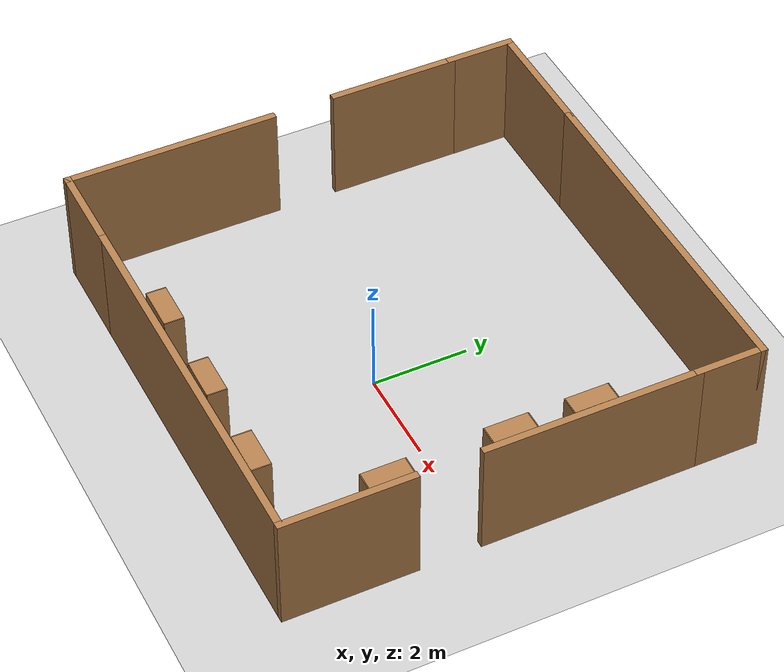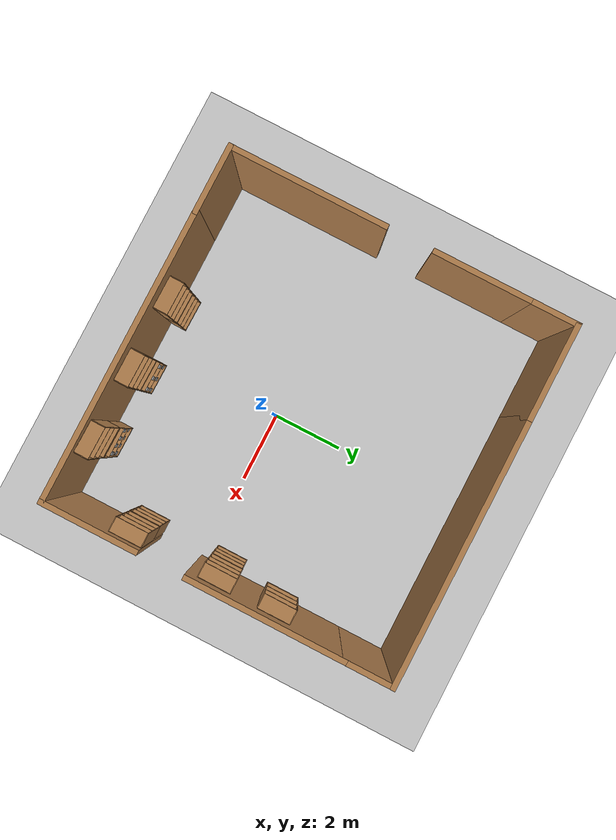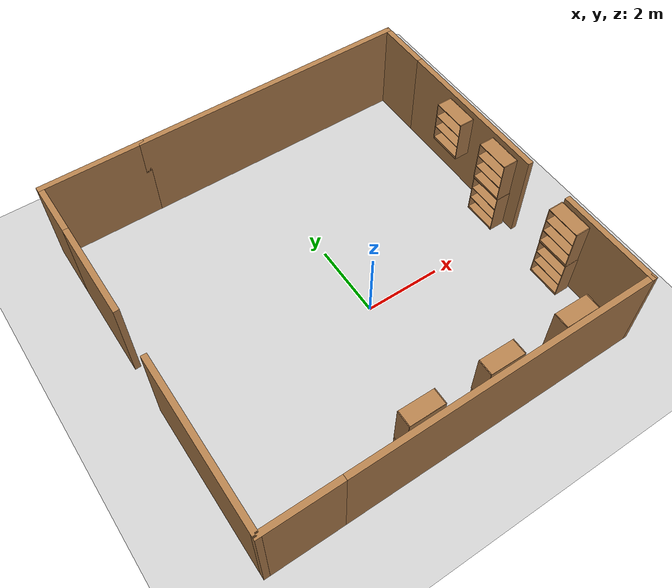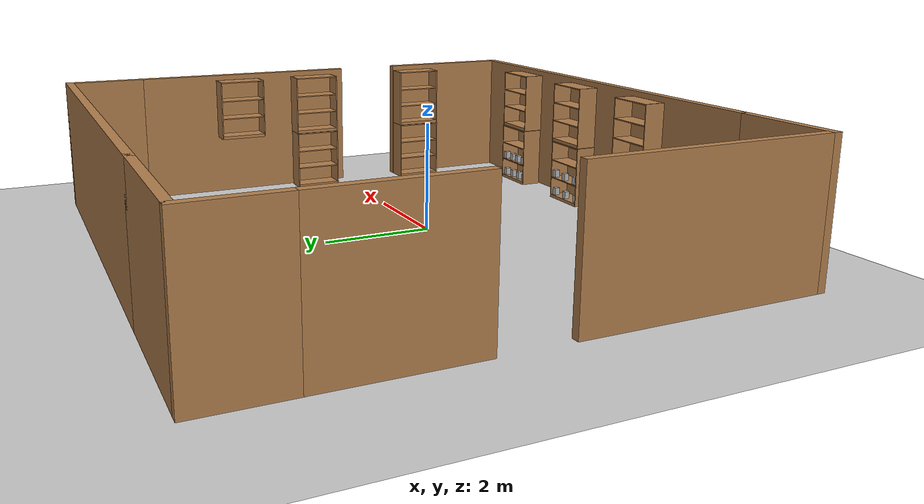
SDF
<sdf version="1.7">
 <world name="default">
  <model name="ground_plane">
   <static>1</static>
   <link name="link">
    <collision name="collision">
     <geometry><plane><normal>0 0 1</normal><size>100 100</size></plane></geometry>
     <surface><friction><ode><mu>100</mu><mu2>50</mu2></ode></friction></surface>
    </collision>
    <visual name="visual">
     <cast_shadows>0</cast_shadows>
     <geometry><plane><normal>0 0 1</normal><size>100 100</size></plane></geometry>
     <material>
      <script><uri>file://media/materials/scripts/gazebo.material</uri><name>Gazebo/Grey</name></script>
     </material>
    </visual>
   </link>
  </model>
  <model name="shopping_mart_box">
   <pose>-0.44063 0.87202 0 0 -0 0</pose>
   <link name="Wall_11">
    <collision name="Wall_11_Collision">
     <geometry><box><size>2 0.15 2.5</size></box></geometry>
     <pose>0 0 1.25 0 -0 0</pose>
    </collision>
    <visual name="Wall_11_Visual">
     <pose>0 0 1.25 0 -0 0</pose>
     <geometry><box><size>2 0.15 2.5</size></box></geometry>
     <material>
      <script><uri>file://media/materials/scripts/gazebo.material</uri><name>Gazebo/Wood</name></script>
      <ambient>1 1 1 1</ambient>
     </material>
    </visual>
    <pose>-4.05 -4.85 0 0 -0 3.14159</pose>
   </link>
   <link name="Wall_12">
    <collision name="Wall_12_Collision">
     <geometry><box><size>4.5 0.15 2.5</size></box></geometry>
     <pose>0 0 1.25 0 -0 0</pose>
    </collision>
    <visual name="Wall_12_Visual">
     <pose>0 0 1.25 0 -0 0</pose>
     <geometry><box><size>4.5 0.15 2.5</size></box></geometry>
     <material>
      <script><uri>file://media/materials/scripts/gazebo.material</uri><name>Gazebo/Wood</name></script>
      <ambient>1 1 1 1</ambient>
     </material>
    </visual>
    <pose>-4.975 -2.675 0 0 -0 1.5708</pose>
   </link>
   <link name="Wall_15">
    <collision name="Wall_15_Collision">
     <geometry><box><size>2.75 0.15 2.5</size></box></geometry>
     <pose>0 0 1.25 0 -0 0</pose>
    </collision>
    <visual name="Wall_15_Visual">
     <pose>0 0 1.25 0 -0 0</pose>
     <geometry><box><size>2.75 0.15 2.5</size></box></geometry>
     <material>
      <script><uri>file://media/materials/scripts/gazebo.material</uri><name>Gazebo/Wood</name></script>
      <ambient>1 1 1 1</ambient>
     </material>
    </visual>
    <pose>-4.975 2.2 0 0 0 -1.5708</pose>
   </link>
   <link name="Wall_17">
    <collision name="Wall_17_Collision">
     <geometry><box><size>1.5 0.15 2.5</size></box></geometry>
     <pose>0 0 1.25 0 -0 0</pose>
    </collision>
    <visual name="Wall_17_Visual">
     <pose>0 0 1.25 0 -0 0</pose>
     <geometry><box><size>1.5 0.15 2.5</size></box></geometry>
     <material>
      <script><uri>file://media/materials/scripts/gazebo.material</uri><name>Gazebo/Wood</name></script>
      <ambient>1 1 1 1</ambient>
     </material>
    </visual>
    <pose>-4.975 4.175 0 0 -0 1.5708</pose>
   </link>
   <link name="Wall_21">
    <collision name="Wall_21_Collision">
     <geometry><box><size>2.75 0.15 2.5</size></box></geometry>
     <pose>0 0 1.25 0 -0 0</pose>
    </collision>
    <visual name="Wall_21_Visual">
     <pose>0 0 1.25 0 -0 0</pose>
     <geometry><box><size>2.75 0.15 2.5</size></box></geometry>
     <material>
      <script><uri>file://media/materials/scripts/gazebo.material</uri><name>Gazebo/Wood</name></script>
      <ambient>1 1 1 1</ambient>
     </material>
    </visual>
    <pose>-3.675 4.85 0 0 -0 0</pose>
   </link>
   <link name="Wall_22">
    <collision name="Wall_22_Collision">
     <geometry><box><size>7.5 0.15 2.5</size></box></geometry>
     <pose>0 0 1.25 0 -0 0</pose>
    </collision>
    <visual name="Wall_22_Visual">
     <pose>0 0 1.25 0 -0 0</pose>
     <geometry><box><size>7.5 0.15 2.5</size></box></geometry>
     <material>
      <script><uri>file://media/materials/scripts/gazebo.material</uri><name>Gazebo/Wood</name></script>
      <ambient>1 1 1 1</ambient>
     </material>
    </visual>
    <pose>1.3 4.85 0 0 -0 0</pose>
   </link>
   <link name="Wall_23">
    <collision name="Wall_23_Collision">
     <geometry><box><size>1.5 0.15 2.5</size></box></geometry>
     <pose>0 0 1.25 0 -0 0</pose>
    </collision>
    <visual name="Wall_23_Visual">
     <pose>0 0 1.25 0 -0 0</pose>
     <geometry><box><size>1.5 0.15 2.5</size></box></geometry>
     <material>
      <script><uri>file://media/materials/scripts/gazebo.material</uri><name>Gazebo/Wood</name></script>
      <ambient>1 1 1 1</ambient>
     </material>
    </visual>
    <pose>4.975 4.175 0 0 0 -1.5708</pose>
   </link>
   <link name="Wall_29">
    <collision name="Wall_29_Collision">
     <geometry><box><size>4.5 0.15 2.5</size></box></geometry>
     <pose>0 0 1.25 0 -0 0</pose>
    </collision>
    <visual name="Wall_29_Visual">
     <pose>0 0 1.25 0 -0 0</pose>
     <geometry><box><size>4.5 0.15 2.5</size></box></geometry>
     <material>
      <script><uri>file://media/materials/scripts/gazebo.material</uri><name>Gazebo/Wood</name></script>
      <ambient>1 1 1 1</ambient>
     </material>
    </visual>
    <pose>4.975 1.325 0 0 0 -1.5708</pose>
   </link>
   <link name="Wall_31">
    <collision name="Wall_31_Collision">
     <geometry><box><size>2.75 0.15 2.5</size></box></geometry>
     <pose>0 0 1.25 0 -0 0</pose>
    </collision>
    <visual name="Wall_31_Visual">
     <pose>0 0 1.25 0 -0 0</pose>
     <geometry><box><size>2.75 0.15 2.5</size></box></geometry>
     <material>
      <script><uri>file://media/materials/scripts/gazebo.material</uri><name>Gazebo/Wood</name></script>
      <ambient>1 1 1 1</ambient>
     </material>
    </visual>
    <pose>4.975 -3.55 0 0 -0 1.5708</pose>
   </link>
   <link name="Wall_6">
    <collision name="Wall_6_Collision">
     <geometry><box><size>8.25 0.15 2.5</size></box></geometry>
     <pose>0 0 1.25 0 -0 0</pose>
    </collision>
    <visual name="Wall_6_Visual">
     <pose>0 0 1.25 0 -0 0</pose>
     <geometry><box><size>8.25 0.15 2.5</size></box></geometry>
     <material>
      <script><uri>file://media/materials/scripts/gazebo.material</uri><name>Gazebo/Wood</name></script>
      <ambient>1 1 1 1</ambient>
     </material>
    </visual>
    <pose>0.925 -4.85 0 0 -0 0</pose>
   </link>
   <static>1</static>
  </model>
  <model name="bookshelf_4_clone_1">
   <static>1</static>
   <link name="link">
    <inertial><mass>1</mass></inertial>
    <collision name="back">
     <pose>0 0.005 0.6 0 -0 0</pose>
     <geometry><box><size>0.9 0.01 1.2</size></box></geometry>
    </collision>
    <visual name="visual1">
     <pose>0 0.005 0.6 0 -0 0</pose>
     <geometry><box><size>0.9 0.01 1.2</size></box></geometry>
     <material>
      <script><uri>file://media/materials/scripts/gazebo.material</uri><name>Gazebo/Wood</name></script>
     </material>
    </visual>
    <collision name="left_side">
     <pose>0.45 -0.195 0.6 0 -0 0</pose>
     <geometry><box><size>0.02 0.4 1.2</size></box></geometry>
    </collision>
    <visual name="visual2">
     <pose>0.45 -0.195 0.6 0 -0 0</pose>
     <geometry><box><size>0.02 0.4 1.2</size></box></geometry>
     <material>
      <script><uri>file://media/materials/scripts/gazebo.material</uri><name>Gazebo/Wood</name></script>
     </material>
    </visual>
    <collision name="right_side">
     <pose>-0.45 -0.195 0.6 0 -0 0</pose>
     <geometry><box><size>0.02 0.4 1.2</size></box></geometry>
    </collision>
    <visual name="visual3">
     <pose>-0.45 -0.195 0.6 0 -0 0</pose>
     <geometry><box><size>0.02 0.4 1.2</size></box></geometry>
     <material>
      <script><uri>file://media/materials/scripts/gazebo.material</uri><name>Gazebo/Wood</name></script>
     </material>
    </visual>
    <collision name="bottom">
     <pose>0 -0.195 0.03 0 -0 0</pose>
     <geometry><box><size>0.88 0.4 0.06</size></box></geometry>
    </collision>
    <visual name="visual4">
     <pose>0 -0.195 0.03 0 -0 0</pose>
     <geometry><box><size>0.88 0.4 0.06</size></box></geometry>
     <material>
      <script><uri>file://media/materials/scripts/gazebo.material</uri><name>Gazebo/Wood</name></script>
     </material>
    </visual>
    <collision name="top">
     <pose>0 -0.195 1.19 0 -0 0</pose>
     <geometry><box><size>0.88 0.4 0.02</size></box></geometry>
    </collision>
    <visual name="visual5">
     <pose>0 -0.195 1.19 0 -0 0</pose>
     <geometry><box><size>0.88 0.4 0.02</size></box></geometry>
     <material>
      <script><uri>file://media/materials/scripts/gazebo.material</uri><name>Gazebo/Wood</name></script>
     </material>
    </visual>
    <collision name="low_shelf">
     <pose>0 -0.195 0.43 0 -0 0</pose>
     <geometry><box><size>0.88 0.4 0.02</size></box></geometry>
    </collision>
    <visual name="visual6">
     <pose>0 -0.195 0.43 0 -0 0</pose>
     <geometry><box><size>0.88 0.4 0.02</size></box></geometry>
     <material>
      <script><uri>file://media/materials/scripts/gazebo.material</uri><name>Gazebo/Wood</name></script>
     </material>
    </visual>
    <collision name="high_shelf">
     <pose>0 -0.195 0.8 0 -0 0</pose>
     <geometry><box><size>0.88 0.4 0.02</size></box></geometry>
    </collision>
    <visual name="visual7">
     <pose>0 -0.195 0.8 0 -0 0</pose>
     <geometry><box><size>0.88 0.4 0.02</size></box></geometry>
     <material>
      <script><uri>file://media/materials/scripts/gazebo.material</uri><name>Gazebo/Wood</name></script>
     </material>
    </visual>
   </link>
   <pose>4.39312 0.69592 0 0 0 -1.5727</pose>
  </model>
  <model name="bookshelf_4_clone_1_clone">
   <static>1</static>
   <link name="link">
    <inertial><mass>1</mass></inertial>
    <collision name="back">
     <pose>0 0.005 0.6 0 -0 0</pose>
     <geometry><box><size>0.9 0.01 1.2</size></box></geometry>
    </collision>
    <visual name="visual1">
     <pose>0 0.005 0.6 0 -0 0</pose>
     <geometry><box><size>0.9 0.01 1.2</size></box></geometry>
     <material>
      <script><uri>file://media/materials/scripts/gazebo.material</uri><name>Gazebo/Wood</name></script>
     </material>
    </visual>
    <collision name="left_side">
     <pose>0.45 -0.195 0.6 0 -0 0</pose>
     <geometry><box><size>0.02 0.4 1.2</size></box></geometry>
    </collision>
    <visual name="visual2">
     <pose>0.45 -0.195 0.6 0 -0 0</pose>
     <geometry><box><size>0.02 0.4 1.2</size></box></geometry>
     <material>
      <script><uri>file://media/materials/scripts/gazebo.material</uri><name>Gazebo/Wood</name></script>
     </material>
    </visual>
    <collision name="right_side">
     <pose>-0.45 -0.195 0.6 0 -0 0</pose>
     <geometry><box><size>0.02 0.4 1.2</size></box></geometry>
    </collision>
    <visual name="visual3">
     <pose>-0.45 -0.195 0.6 0 -0 0</pose>
     <geometry><box><size>0.02 0.4 1.2</size></box></geometry>
     <material>
      <script><uri>file://media/materials/scripts/gazebo.material</uri><name>Gazebo/Wood</name></script>
     </material>
    </visual>
    <collision name="bottom">
     <pose>0 -0.195 0.03 0 -0 0</pose>
     <geometry><box><size>0.88 0.4 0.06</size></box></geometry>
    </collision>
    <visual name="visual4">
     <pose>0 -0.195 0.03 0 -0 0</pose>
     <geometry><box><size>0.88 0.4 0.06</size></box></geometry>
     <material>
      <script><uri>file://media/materials/scripts/gazebo.material</uri><name>Gazebo/Wood</name></script>
     </material>
    </visual>
    <collision name="top">
     <pose>0 -0.195 1.19 0 -0 0</pose>
     <geometry><box><size>0.88 0.4 0.02</size></box></geometry>
    </collision>
    <visual name="visual5">
     <pose>0 -0.195 1.19 0 -0 0</pose>
     <geometry><box><size>0.88 0.4 0.02</size></box></geometry>
     <material>
      <script><uri>file://media/materials/scripts/gazebo.material</uri><name>Gazebo/Wood</name></script>
     </material>
    </visual>
    <collision name="low_shelf">
     <pose>0 -0.195 0.43 0 -0 0</pose>
     <geometry><box><size>0.88 0.4 0.02</size></box></geometry>
    </collision>
    <visual name="visual6">
     <pose>0 -0.195 0.43 0 -0 0</pose>
     <geometry><box><size>0.88 0.4 0.02</size></box></geometry>
     <material>
      <script><uri>file://media/materials/scripts/gazebo.material</uri><name>Gazebo/Wood</name></script>
     </material>
    </visual>
    <collision name="high_shelf">
     <pose>0 -0.195 0.8 0 -0 0</pose>
     <geometry><box><size>0.88 0.4 0.02</size></box></geometry>
    </collision>
    <visual name="visual7">
     <pose>0 -0.195 0.8 0 -0 0</pose>
     <geometry><box><size>0.88 0.4 0.02</size></box></geometry>
     <material>
      <script><uri>file://media/materials/scripts/gazebo.material</uri><name>Gazebo/Wood</name></script>
     </material>
    </visual>
   </link>
   <pose>4.3806 2.34957 1.20741 0 0 -1.5727</pose>
  </model>
  <model name="bookshelf_4_clone_1_clone_clone_0">
   <static>1</static>
   <link name="link">
    <inertial><mass>1</mass></inertial>
    <collision name="back">
     <pose>0 0.005 0.6 0 -0 0</pose>
     <geometry><box><size>0.9 0.01 1.2</size></box></geometry>
    </collision>
    <visual name="visual1">
     <pose>0 0.005 0.6 0 -0 0</pose>
     <geometry><box><size>0.9 0.01 1.2</size></box></geometry>
     <material>
      <script><uri>file://media/materials/scripts/gazebo.material</uri><name>Gazebo/Wood</name></script>
     </material>
    </visual>
    <collision name="left_side">
     <pose>0.45 -0.195 0.6 0 -0 0</pose>
     <geometry><box><size>0.02 0.4 1.2</size></box></geometry>
    </collision>
    <visual name="visual2">
     <pose>0.45 -0.195 0.6 0 -0 0</pose>
     <geometry><box><size>0.02 0.4 1.2</size></box></geometry>
     <material>
      <script><uri>file://media/materials/scripts/gazebo.material</uri><name>Gazebo/Wood</name></script>
     </material>
    </visual>
    <collision name="right_side">
     <pose>-0.45 -0.195 0.6 0 -0 0</pose>
     <geometry><box><size>0.02 0.4 1.2</size></box></geometry>
    </collision>
    <visual name="visual3">
     <pose>-0.45 -0.195 0.6 0 -0 0</pose>
     <geometry><box><size>0.02 0.4 1.2</size></box></geometry>
     <material>
      <script><uri>file://media/materials/scripts/gazebo.material</uri><name>Gazebo/Wood</name></script>
     </material>
    </visual>
    <collision name="bottom">
     <pose>0 -0.195 0.03 0 -0 0</pose>
     <geometry><box><size>0.88 0.4 0.06</size></box></geometry>
    </collision>
    <visual name="visual4">
     <pose>0 -0.195 0.03 0 -0 0</pose>
     <geometry><box><size>0.88 0.4 0.06</size></box></geometry>
     <material>
      <script><uri>file://media/materials/scripts/gazebo.material</uri><name>Gazebo/Wood</name></script>
     </material>
    </visual>
    <collision name="top">
     <pose>0 -0.195 1.19 0 -0 0</pose>
     <geometry><box><size>0.88 0.4 0.02</size></box></geometry>
    </collision>
    <visual name="visual5">
     <pose>0 -0.195 1.19 0 -0 0</pose>
     <geometry><box><size>0.88 0.4 0.02</size></box></geometry>
     <material>
      <script><uri>file://media/materials/scripts/gazebo.material</uri><name>Gazebo/Wood</name></script>
     </material>
    </visual>
    <collision name="low_shelf">
     <pose>0 -0.195 0.43 0 -0 0</pose>
     <geometry><box><size>0.88 0.4 0.02</size></box></geometry>
    </collision>
    <visual name="visual6">
     <pose>0 -0.195 0.43 0 -0 0</pose>
     <geometry><box><size>0.88 0.4 0.02</size></box></geometry>
     <material>
      <script><uri>file://media/materials/scripts/gazebo.material</uri><name>Gazebo/Wood</name></script>
     </material>
    </visual>
    <collision name="high_shelf">
     <pose>0 -0.195 0.8 0 -0 0</pose>
     <geometry><box><size>0.88 0.4 0.02</size></box></geometry>
    </collision>
    <visual name="visual7">
     <pose>0 -0.195 0.8 0 -0 0</pose>
     <geometry><box><size>0.88 0.4 0.02</size></box></geometry>
     <material>
      <script><uri>file://media/materials/scripts/gazebo.material</uri><name>Gazebo/Wood</name></script>
     </material>
    </visual>
   </link>
   <pose>4.38615 0.705306 1.20741 0 0 -1.5727</pose>
  </model>
  <model name="bookshelf_5">
   <static>1</static>
   <link name="link">
    <inertial><mass>1</mass></inertial>
    <collision name="back">
     <pose>0 0.005 0.6 0 -0 0</pose>
     <geometry><box><size>0.9 0.01 1.2</size></box></geometry>
    </collision>
    <visual name="visual1">
     <pose>0 0.005 0.6 0 -0 0</pose>
     <geometry><box><size>0.9 0.01 1.2</size></box></geometry>
     <material>
      <script><uri>file://media/materials/scripts/gazebo.material</uri><name>Gazebo/Wood</name></script>
     </material>
    </visual>
    <collision name="left_side">
     <pose>0.45 -0.195 0.6 0 -0 0</pose>
     <geometry><box><size>0.02 0.4 1.2</size></box></geometry>
    </collision>
    <visual name="visual2">
     <pose>0.45 -0.195 0.6 0 -0 0</pose>
     <geometry><box><size>0.02 0.4 1.2</size></box></geometry>
     <material>
      <script><uri>file://media/materials/scripts/gazebo.material</uri><name>Gazebo/Wood</name></script>
     </material>
    </visual>
    <collision name="right_side">
     <pose>-0.45 -0.195 0.6 0 -0 0</pose>
     <geometry><box><size>0.02 0.4 1.2</size></box></geometry>
    </collision>
    <visual name="visual3">
     <pose>-0.45 -0.195 0.6 0 -0 0</pose>
     <geometry><box><size>0.02 0.4 1.2</size></box></geometry>
     <material>
      <script><uri>file://media/materials/scripts/gazebo.material</uri><name>Gazebo/Wood</name></script>
     </material>
    </visual>
    <collision name="bottom">
     <pose>0 -0.195 0.03 0 -0 0</pose>
     <geometry><box><size>0.88 0.4 0.06</size></box></geometry>
    </collision>
    <visual name="visual4">
     <pose>0 -0.195 0.03 0 -0 0</pose>
     <geometry><box><size>0.88 0.4 0.06</size></box></geometry>
     <material>
      <script><uri>file://media/materials/scripts/gazebo.material</uri><name>Gazebo/Wood</name></script>
     </material>
    </visual>
    <collision name="top">
     <pose>0 -0.195 1.19 0 -0 0</pose>
     <geometry><box><size>0.88 0.4 0.02</size></box></geometry>
    </collision>
    <visual name="visual5">
     <pose>0 -0.195 1.19 0 -0 0</pose>
     <geometry><box><size>0.88 0.4 0.02</size></box></geometry>
     <material>
      <script><uri>file://media/materials/scripts/gazebo.material</uri><name>Gazebo/Wood</name></script>
     </material>
    </visual>
    <collision name="low_shelf">
     <pose>0 -0.195 0.43 0 -0 0</pose>
     <geometry><box><size>0.88 0.4 0.02</size></box></geometry>
    </collision>
    <visual name="visual6">
     <pose>0 -0.195 0.43 0 -0 0</pose>
     <geometry><box><size>0.88 0.4 0.02</size></box></geometry>
     <material>
      <script><uri>file://media/materials/scripts/gazebo.material</uri><name>Gazebo/Wood</name></script>
     </material>
    </visual>
    <collision name="high_shelf">
     <pose>0 -0.195 0.8 0 -0 0</pose>
     <geometry><box><size>0.88 0.4 0.02</size></box></geometry>
    </collision>
    <visual name="visual7">
     <pose>0 -0.195 0.8 0 -0 0</pose>
     <geometry><box><size>0.88 0.4 0.02</size></box></geometry>
     <material>
      <script><uri>file://media/materials/scripts/gazebo.material</uri><name>Gazebo/Wood</name></script>
     </material>
    </visual>
   </link>
   <pose>2.65151 -3.85953 0 0 -0 3.12955</pose>
  </model>
  <model name="bookshelf_5_clone_0">
   <static>1</static>
   <link name="link">
    <inertial><mass>1</mass></inertial>
    <collision name="back">
     <pose>0 0.005 0.6 0 -0 0</pose>
     <geometry><box><size>0.9 0.01 1.2</size></box></geometry>
    </collision>
    <visual name="visual1">
     <pose>0 0.005 0.6 0 -0 0</pose>
     <geometry><box><size>0.9 0.01 1.2</size></box></geometry>
     <material>
      <script><uri>file://media/materials/scripts/gazebo.material</uri><name>Gazebo/Wood</name></script>
     </material>
    </visual>
    <collision name="left_side">
     <pose>0.45 -0.195 0.6 0 -0 0</pose>
     <geometry><box><size>0.02 0.4 1.2</size></box></geometry>
    </collision>
    <visual name="visual2">
     <pose>0.45 -0.195 0.6 0 -0 0</pose>
     <geometry><box><size>0.02 0.4 1.2</size></box></geometry>
     <material>
      <script><uri>file://media/materials/scripts/gazebo.material</uri><name>Gazebo/Wood</name></script>
     </material>
    </visual>
    <collision name="right_side">
     <pose>-0.45 -0.195 0.6 0 -0 0</pose>
     <geometry><box><size>0.02 0.4 1.2</size></box></geometry>
    </collision>
    <visual name="visual3">
     <pose>-0.45 -0.195 0.6 0 -0 0</pose>
     <geometry><box><size>0.02 0.4 1.2</size></box></geometry>
     <material>
      <script><uri>file://media/materials/scripts/gazebo.material</uri><name>Gazebo/Wood</name></script>
     </material>
    </visual>
    <collision name="bottom">
     <pose>0 -0.195 0.03 0 -0 0</pose>
     <geometry><box><size>0.88 0.4 0.06</size></box></geometry>
    </collision>
    <visual name="visual4">
     <pose>0 -0.195 0.03 0 -0 0</pose>
     <geometry><box><size>0.88 0.4 0.06</size></box></geometry>
     <material>
      <script><uri>file://media/materials/scripts/gazebo.material</uri><name>Gazebo/Wood</name></script>
     </material>
    </visual>
    <collision name="top">
     <pose>0 -0.195 1.19 0 -0 0</pose>
     <geometry><box><size>0.88 0.4 0.02</size></box></geometry>
    </collision>
    <visual name="visual5">
     <pose>0 -0.195 1.19 0 -0 0</pose>
     <geometry><box><size>0.88 0.4 0.02</size></box></geometry>
     <material>
      <script><uri>file://media/materials/scripts/gazebo.material</uri><name>Gazebo/Wood</name></script>
     </material>
    </visual>
    <collision name="low_shelf">
     <pose>0 -0.195 0.43 0 -0 0</pose>
     <geometry><box><size>0.88 0.4 0.02</size></box></geometry>
    </collision>
    <visual name="visual6">
     <pose>0 -0.195 0.43 0 -0 0</pose>
     <geometry><box><size>0.88 0.4 0.02</size></box></geometry>
     <material>
      <script><uri>file://media/materials/scripts/gazebo.material</uri><name>Gazebo/Wood</name></script>
     </material>
    </visual>
    <collision name="high_shelf">
     <pose>0 -0.195 0.8 0 -0 0</pose>
     <geometry><box><size>0.88 0.4 0.02</size></box></geometry>
    </collision>
    <visual name="visual7">
     <pose>0 -0.195 0.8 0 -0 0</pose>
     <geometry><box><size>0.88 0.4 0.02</size></box></geometry>
     <material>
      <script><uri>file://media/materials/scripts/gazebo.material</uri><name>Gazebo/Wood</name></script>
     </material>
    </visual>
   </link>
   <pose>0.624398 -3.83719 0 0 -0 3.12955</pose>
  </model>
  <model name="bookshelf_5_clone_2">
   <static>1</static>
   <link name="link">
    <inertial><mass>1</mass></inertial>
    <collision name="back">
     <pose>0 0.005 0.6 0 -0 0</pose>
     <geometry><box><size>0.9 0.01 1.2</size></box></geometry>
    </collision>
    <visual name="visual1">
     <pose>0 0.005 0.6 0 -0 0</pose>
     <geometry><box><size>0.9 0.01 1.2</size></box></geometry>
     <material>
      <script><uri>file://media/materials/scripts/gazebo.material</uri><name>Gazebo/Wood</name></script>
     </material>
    </visual>
    <collision name="left_side">
     <pose>0.45 -0.195 0.6 0 -0 0</pose>
     <geometry><box><size>0.02 0.4 1.2</size></box></geometry>
    </collision>
    <visual name="visual2">
     <pose>0.45 -0.195 0.6 0 -0 0</pose>
     <geometry><box><size>0.02 0.4 1.2</size></box></geometry>
     <material>
      <script><uri>file://media/materials/scripts/gazebo.material</uri><name>Gazebo/Wood</name></script>
     </material>
    </visual>
    <collision name="right_side">
     <pose>-0.45 -0.195 0.6 0 -0 0</pose>
     <geometry><box><size>0.02 0.4 1.2</size></box></geometry>
    </collision>
    <visual name="visual3">
     <pose>-0.45 -0.195 0.6 0 -0 0</pose>
     <geometry><box><size>0.02 0.4 1.2</size></box></geometry>
     <material>
      <script><uri>file://media/materials/scripts/gazebo.material</uri><name>Gazebo/Wood</name></script>
     </material>
    </visual>
    <collision name="bottom">
     <pose>0 -0.195 0.03 0 -0 0</pose>
     <geometry><box><size>0.88 0.4 0.06</size></box></geometry>
    </collision>
    <visual name="visual4">
     <pose>0 -0.195 0.03 0 -0 0</pose>
     <geometry><box><size>0.88 0.4 0.06</size></box></geometry>
     <material>
      <script><uri>file://media/materials/scripts/gazebo.material</uri><name>Gazebo/Wood</name></script>
     </material>
    </visual>
    <collision name="top">
     <pose>0 -0.195 1.19 0 -0 0</pose>
     <geometry><box><size>0.88 0.4 0.02</size></box></geometry>
    </collision>
    <visual name="visual5">
     <pose>0 -0.195 1.19 0 -0 0</pose>
     <geometry><box><size>0.88 0.4 0.02</size></box></geometry>
     <material>
      <script><uri>file://media/materials/scripts/gazebo.material</uri><name>Gazebo/Wood</name></script>
     </material>
    </visual>
    <collision name="low_shelf">
     <pose>0 -0.195 0.43 0 -0 0</pose>
     <geometry><box><size>0.88 0.4 0.02</size></box></geometry>
    </collision>
    <visual name="visual6">
     <pose>0 -0.195 0.43 0 -0 0</pose>
     <geometry><box><size>0.88 0.4 0.02</size></box></geometry>
     <material>
      <script><uri>file://media/materials/scripts/gazebo.material</uri><name>Gazebo/Wood</name></script>
     </material>
    </visual>
    <collision name="high_shelf">
     <pose>0 -0.195 0.8 0 -0 0</pose>
     <geometry><box><size>0.88 0.4 0.02</size></box></geometry>
    </collision>
    <visual name="visual7">
     <pose>0 -0.195 0.8 0 -0 0</pose>
     <geometry><box><size>0.88 0.4 0.02</size></box></geometry>
     <material>
      <script><uri>file://media/materials/scripts/gazebo.material</uri><name>Gazebo/Wood</name></script>
     </material>
    </visual>
   </link>
   <pose>-1.42311 -3.81825 0 0 -0 3.12955</pose>
  </model>
  <model name="bookshelf_5_clone">
   <static>1</static>
   <link name="link">
    <inertial><mass>1</mass></inertial>
    <collision name="back">
     <pose>0 0.005 0.6 0 -0 0</pose>
     <geometry><box><size>0.9 0.01 1.2</size></box></geometry>
    </collision>
    <visual name="visual1">
     <pose>0 0.005 0.6 0 -0 0</pose>
     <geometry><box><size>0.9 0.01 1.2</size></box></geometry>
     <material>
      <script><uri>file://media/materials/scripts/gazebo.material</uri><name>Gazebo/Wood</name></script>
     </material>
    </visual>
    <collision name="left_side">
     <pose>0.45 -0.195 0.6 0 -0 0</pose>
     <geometry><box><size>0.02 0.4 1.2</size></box></geometry>
    </collision>
    <visual name="visual2">
     <pose>0.45 -0.195 0.6 0 -0 0</pose>
     <geometry><box><size>0.02 0.4 1.2</size></box></geometry>
     <material>
      <script><uri>file://media/materials/scripts/gazebo.material</uri><name>Gazebo/Wood</name></script>
     </material>
    </visual>
    <collision name="right_side">
     <pose>-0.45 -0.195 0.6 0 -0 0</pose>
     <geometry><box><size>0.02 0.4 1.2</size></box></geometry>
    </collision>
    <visual name="visual3">
     <pose>-0.45 -0.195 0.6 0 -0 0</pose>
     <geometry><box><size>0.02 0.4 1.2</size></box></geometry>
     <material>
      <script><uri>file://media/materials/scripts/gazebo.material</uri><name>Gazebo/Wood</name></script>
     </material>
    </visual>
    <collision name="bottom">
     <pose>0 -0.195 0.03 0 -0 0</pose>
     <geometry><box><size>0.88 0.4 0.06</size></box></geometry>
    </collision>
    <visual name="visual4">
     <pose>0 -0.195 0.03 0 -0 0</pose>
     <geometry><box><size>0.88 0.4 0.06</size></box></geometry>
     <material>
      <script><uri>file://media/materials/scripts/gazebo.material</uri><name>Gazebo/Wood</name></script>
     </material>
    </visual>
    <collision name="top">
     <pose>0 -0.195 1.19 0 -0 0</pose>
     <geometry><box><size>0.88 0.4 0.02</size></box></geometry>
    </collision>
    <visual name="visual5">
     <pose>0 -0.195 1.19 0 -0 0</pose>
     <geometry><box><size>0.88 0.4 0.02</size></box></geometry>
     <material>
      <script><uri>file://media/materials/scripts/gazebo.material</uri><name>Gazebo/Wood</name></script>
     </material>
    </visual>
    <collision name="low_shelf">
     <pose>0 -0.195 0.43 0 -0 0</pose>
     <geometry><box><size>0.88 0.4 0.02</size></box></geometry>
    </collision>
    <visual name="visual6">
     <pose>0 -0.195 0.43 0 -0 0</pose>
     <geometry><box><size>0.88 0.4 0.02</size></box></geometry>
     <material>
      <script><uri>file://media/materials/scripts/gazebo.material</uri><name>Gazebo/Wood</name></script>
     </material>
    </visual>
    <collision name="high_shelf">
     <pose>0 -0.195 0.8 0 -0 0</pose>
     <geometry><box><size>0.88 0.4 0.02</size></box></geometry>
    </collision>
    <visual name="visual7">
     <pose>0 -0.195 0.8 0 -0 0</pose>
     <geometry><box><size>0.88 0.4 0.02</size></box></geometry>
     <material>
      <script><uri>file://media/materials/scripts/gazebo.material</uri><name>Gazebo/Wood</name></script>
     </material>
    </visual>
   </link>
   <pose>2.64795 -3.86432 1.21139 0 -0 3.12955</pose>
  </model>
  <model name="bookshelf_5_clone_clone">
   <static>1</static>
   <link name="link">
    <inertial><mass>1</mass></inertial>
    <collision name="back">
     <pose>0 0.005 0.6 0 -0 0</pose>
     <geometry><box><size>0.9 0.01 1.2</size></box></geometry>
    </collision>
    <visual name="visual1">
     <pose>0 0.005 0.6 0 -0 0</pose>
     <geometry><box><size>0.9 0.01 1.2</size></box></geometry>
     <material>
      <script><uri>file://media/materials/scripts/gazebo.material</uri><name>Gazebo/Wood</name></script>
     </material>
    </visual>
    <collision name="left_side">
     <pose>0.45 -0.195 0.6 0 -0 0</pose>
     <geometry><box><size>0.02 0.4 1.2</size></box></geometry>
    </collision>
    <visual name="visual2">
     <pose>0.45 -0.195 0.6 0 -0 0</pose>
     <geometry><box><size>0.02 0.4 1.2</size></box></geometry>
     <material>
      <script><uri>file://media/materials/scripts/gazebo.material</uri><name>Gazebo/Wood</name></script>
     </material>
    </visual>
    <collision name="right_side">
     <pose>-0.45 -0.195 0.6 0 -0 0</pose>
     <geometry><box><size>0.02 0.4 1.2</size></box></geometry>
    </collision>
    <visual name="visual3">
     <pose>-0.45 -0.195 0.6 0 -0 0</pose>
     <geometry><box><size>0.02 0.4 1.2</size></box></geometry>
     <material>
      <script><uri>file://media/materials/scripts/gazebo.material</uri><name>Gazebo/Wood</name></script>
     </material>
    </visual>
    <collision name="bottom">
     <pose>0 -0.195 0.03 0 -0 0</pose>
     <geometry><box><size>0.88 0.4 0.06</size></box></geometry>
    </collision>
    <visual name="visual4">
     <pose>0 -0.195 0.03 0 -0 0</pose>
     <geometry><box><size>0.88 0.4 0.06</size></box></geometry>
     <material>
      <script><uri>file://media/materials/scripts/gazebo.material</uri><name>Gazebo/Wood</name></script>
     </material>
    </visual>
    <collision name="top">
     <pose>0 -0.195 1.19 0 -0 0</pose>
     <geometry><box><size>0.88 0.4 0.02</size></box></geometry>
    </collision>
    <visual name="visual5">
     <pose>0 -0.195 1.19 0 -0 0</pose>
     <geometry><box><size>0.88 0.4 0.02</size></box></geometry>
     <material>
      <script><uri>file://media/materials/scripts/gazebo.material</uri><name>Gazebo/Wood</name></script>
     </material>
    </visual>
    <collision name="low_shelf">
     <pose>0 -0.195 0.43 0 -0 0</pose>
     <geometry><box><size>0.88 0.4 0.02</size></box></geometry>
    </collision>
    <visual name="visual6">
     <pose>0 -0.195 0.43 0 -0 0</pose>
     <geometry><box><size>0.88 0.4 0.02</size></box></geometry>
     <material>
      <script><uri>file://media/materials/scripts/gazebo.material</uri><name>Gazebo/Wood</name></script>
     </material>
    </visual>
    <collision name="high_shelf">
     <pose>0 -0.195 0.8 0 -0 0</pose>
     <geometry><box><size>0.88 0.4 0.02</size></box></geometry>
    </collision>
    <visual name="visual7">
     <pose>0 -0.195 0.8 0 -0 0</pose>
     <geometry><box><size>0.88 0.4 0.02</size></box></geometry>
     <material>
      <script><uri>file://media/materials/scripts/gazebo.material</uri><name>Gazebo/Wood</name></script>
     </material>
    </visual>
   </link>
   <pose>0.620317 -3.82873 1.21139 0 -0 3.12955</pose>
  </model>
  <model name="bookshelf_5_clone_clone_0">
   <static>1</static>
   <link name="link">
    <inertial><mass>1</mass></inertial>
    <collision name="back">
     <pose>0 0.005 0.6 0 -0 0</pose>
     <geometry><box><size>0.9 0.01 1.2</size></box></geometry>
    </collision>
    <visual name="visual1">
     <pose>0 0.005 0.6 0 -0 0</pose>
     <geometry><box><size>0.9 0.01 1.2</size></box></geometry>
     <material>
      <script><uri>file://media/materials/scripts/gazebo.material</uri><name>Gazebo/Wood</name></script>
     </material>
    </visual>
    <collision name="left_side">
     <pose>0.45 -0.195 0.6 0 -0 0</pose>
     <geometry><box><size>0.02 0.4 1.2</size></box></geometry>
    </collision>
    <visual name="visual2">
     <pose>0.45 -0.195 0.6 0 -0 0</pose>
     <geometry><box><size>0.02 0.4 1.2</size></box></geometry>
     <material>
      <script><uri>file://media/materials/scripts/gazebo.material</uri><name>Gazebo/Wood</name></script>
     </material>
    </visual>
    <collision name="right_side">
     <pose>-0.45 -0.195 0.6 0 -0 0</pose>
     <geometry><box><size>0.02 0.4 1.2</size></box></geometry>
    </collision>
    <visual name="visual3">
     <pose>-0.45 -0.195 0.6 0 -0 0</pose>
     <geometry><box><size>0.02 0.4 1.2</size></box></geometry>
     <material>
      <script><uri>file://media/materials/scripts/gazebo.material</uri><name>Gazebo/Wood</name></script>
     </material>
    </visual>
    <collision name="bottom">
     <pose>0 -0.195 0.03 0 -0 0</pose>
     <geometry><box><size>0.88 0.4 0.06</size></box></geometry>
    </collision>
    <visual name="visual4">
     <pose>0 -0.195 0.03 0 -0 0</pose>
     <geometry><box><size>0.88 0.4 0.06</size></box></geometry>
     <material>
      <script><uri>file://media/materials/scripts/gazebo.material</uri><name>Gazebo/Wood</name></script>
     </material>
    </visual>
    <collision name="top">
     <pose>0 -0.195 1.19 0 -0 0</pose>
     <geometry><box><size>0.88 0.4 0.02</size></box></geometry>
    </collision>
    <visual name="visual5">
     <pose>0 -0.195 1.19 0 -0 0</pose>
     <geometry><box><size>0.88 0.4 0.02</size></box></geometry>
     <material>
      <script><uri>file://media/materials/scripts/gazebo.material</uri><name>Gazebo/Wood</name></script>
     </material>
    </visual>
    <collision name="low_shelf">
     <pose>0 -0.195 0.43 0 -0 0</pose>
     <geometry><box><size>0.88 0.4 0.02</size></box></geometry>
    </collision>
    <visual name="visual6">
     <pose>0 -0.195 0.43 0 -0 0</pose>
     <geometry><box><size>0.88 0.4 0.02</size></box></geometry>
     <material>
      <script><uri>file://media/materials/scripts/gazebo.material</uri><name>Gazebo/Wood</name></script>
     </material>
    </visual>
    <collision name="high_shelf">
     <pose>0 -0.195 0.8 0 -0 0</pose>
     <geometry><box><size>0.88 0.4 0.02</size></box></geometry>
    </collision>
    <visual name="visual7">
     <pose>0 -0.195 0.8 0 -0 0</pose>
     <geometry><box><size>0.88 0.4 0.02</size></box></geometry>
     <material>
      <script><uri>file://media/materials/scripts/gazebo.material</uri><name>Gazebo/Wood</name></script>
     </material>
    </visual>
   </link>
   <pose>-1.41694 -3.81004 1.21139 0 -0 3.12955</pose>
  </model>
  <model name="bookshelf_4_clone_clone">
   <static>1</static>
   <link name="link">
    <inertial><mass>1</mass></inertial>
    <collision name="back">
     <pose>0 0.005 0.6 0 -0 0</pose>
     <geometry><box><size>0.9 0.01 1.2</size></box></geometry>
    </collision>
    <visual name="visual1">
     <pose>0 0.005 0.6 0 -0 0</pose>
     <geometry><box><size>0.9 0.01 1.2</size></box></geometry>
     <material>
      <script><uri>file://media/materials/scripts/gazebo.material</uri><name>Gazebo/Wood</name></script>
     </material>
    </visual>
    <collision name="left_side">
     <pose>0.45 -0.195 0.6 0 -0 0</pose>
     <geometry><box><size>0.02 0.4 1.2</size></box></geometry>
    </collision>
    <visual name="visual2">
     <pose>0.45 -0.195 0.6 0 -0 0</pose>
     <geometry><box><size>0.02 0.4 1.2</size></box></geometry>
     <material>
      <script><uri>file://media/materials/scripts/gazebo.material</uri><name>Gazebo/Wood</name></script>
     </material>
    </visual>
    <collision name="right_side">
     <pose>-0.45 -0.195 0.6 0 -0 0</pose>
     <geometry><box><size>0.02 0.4 1.2</size></box></geometry>
    </collision>
    <visual name="visual3">
     <pose>-0.45 -0.195 0.6 0 -0 0</pose>
     <geometry><box><size>0.02 0.4 1.2</size></box></geometry>
     <material>
      <script><uri>file://media/materials/scripts/gazebo.material</uri><name>Gazebo/Wood</name></script>
     </material>
    </visual>
    <collision name="bottom">
     <pose>0 -0.195 0.03 0 -0 0</pose>
     <geometry><box><size>0.88 0.4 0.06</size></box></geometry>
    </collision>
    <visual name="visual4">
     <pose>0 -0.195 0.03 0 -0 0</pose>
     <geometry><box><size>0.88 0.4 0.06</size></box></geometry>
     <material>
      <script><uri>file://media/materials/scripts/gazebo.material</uri><name>Gazebo/Wood</name></script>
     </material>
    </visual>
    <collision name="top">
     <pose>0 -0.195 1.19 0 -0 0</pose>
     <geometry><box><size>0.88 0.4 0.02</size></box></geometry>
    </collision>
    <visual name="visual5">
     <pose>0 -0.195 1.19 0 -0 0</pose>
     <geometry><box><size>0.88 0.4 0.02</size></box></geometry>
     <material>
      <script><uri>file://media/materials/scripts/gazebo.material</uri><name>Gazebo/Wood</name></script>
     </material>
    </visual>
    <collision name="low_shelf">
     <pose>0 -0.195 0.43 0 -0 0</pose>
     <geometry><box><size>0.88 0.4 0.02</size></box></geometry>
    </collision>
    <visual name="visual6">
     <pose>0 -0.195 0.43 0 -0 0</pose>
     <geometry><box><size>0.88 0.4 0.02</size></box></geometry>
     <material>
      <script><uri>file://media/materials/scripts/gazebo.material</uri><name>Gazebo/Wood</name></script>
     </material>
    </visual>
    <collision name="high_shelf">
     <pose>0 -0.195 0.8 0 -0 0</pose>
     <geometry><box><size>0.88 0.4 0.02</size></box></geometry>
    </collision>
    <visual name="visual7">
     <pose>0 -0.195 0.8 0 -0 0</pose>
     <geometry><box><size>0.88 0.4 0.02</size></box></geometry>
     <material>
      <script><uri>file://media/materials/scripts/gazebo.material</uri><name>Gazebo/Wood</name></script>
     </material>
    </visual>
   </link>
   <pose>4.40573 -1.76165 0 0 0 -1.5727</pose>
  </model>
  <model name="bookshelf_4_clone_1_clone_clone_clone">
   <static>1</static>
   <link name="link">
    <inertial><mass>1</mass></inertial>
    <collision name="back">
     <pose>0 0.005 0.6 0 -0 0</pose>
     <geometry><box><size>0.9 0.01 1.2</size></box></geometry>
    </collision>
    <visual name="visual1">
     <pose>0 0.005 0.6 0 -0 0</pose>
     <geometry><box><size>0.9 0.01 1.2</size></box></geometry>
     <material>
      <script><uri>file://media/materials/scripts/gazebo.material</uri><name>Gazebo/Wood</name></script>
     </material>
    </visual>
    <collision name="left_side">
     <pose>0.45 -0.195 0.6 0 -0 0</pose>
     <geometry><box><size>0.02 0.4 1.2</size></box></geometry>
    </collision>
    <visual name="visual2">
     <pose>0.45 -0.195 0.6 0 -0 0</pose>
     <geometry><box><size>0.02 0.4 1.2</size></box></geometry>
     <material>
      <script><uri>file://media/materials/scripts/gazebo.material</uri><name>Gazebo/Wood</name></script>
     </material>
    </visual>
    <collision name="right_side">
     <pose>-0.45 -0.195 0.6 0 -0 0</pose>
     <geometry><box><size>0.02 0.4 1.2</size></box></geometry>
    </collision>
    <visual name="visual3">
     <pose>-0.45 -0.195 0.6 0 -0 0</pose>
     <geometry><box><size>0.02 0.4 1.2</size></box></geometry>
     <material>
      <script><uri>file://media/materials/scripts/gazebo.material</uri><name>Gazebo/Wood</name></script>
     </material>
    </visual>
    <collision name="bottom">
     <pose>0 -0.195 0.03 0 -0 0</pose>
     <geometry><box><size>0.88 0.4 0.06</size></box></geometry>
    </collision>
    <visual name="visual4">
     <pose>0 -0.195 0.03 0 -0 0</pose>
     <geometry><box><size>0.88 0.4 0.06</size></box></geometry>
     <material>
      <script><uri>file://media/materials/scripts/gazebo.material</uri><name>Gazebo/Wood</name></script>
     </material>
    </visual>
    <collision name="top">
     <pose>0 -0.195 1.19 0 -0 0</pose>
     <geometry><box><size>0.88 0.4 0.02</size></box></geometry>
    </collision>
    <visual name="visual5">
     <pose>0 -0.195 1.19 0 -0 0</pose>
     <geometry><box><size>0.88 0.4 0.02</size></box></geometry>
     <material>
      <script><uri>file://media/materials/scripts/gazebo.material</uri><name>Gazebo/Wood</name></script>
     </material>
    </visual>
    <collision name="low_shelf">
     <pose>0 -0.195 0.43 0 -0 0</pose>
     <geometry><box><size>0.88 0.4 0.02</size></box></geometry>
    </collision>
    <visual name="visual6">
     <pose>0 -0.195 0.43 0 -0 0</pose>
     <geometry><box><size>0.88 0.4 0.02</size></box></geometry>
     <material>
      <script><uri>file://media/materials/scripts/gazebo.material</uri><name>Gazebo/Wood</name></script>
     </material>
    </visual>
    <collision name="high_shelf">
     <pose>0 -0.195 0.8 0 -0 0</pose>
     <geometry><box><size>0.88 0.4 0.02</size></box></geometry>
    </collision>
    <visual name="visual7">
     <pose>0 -0.195 0.8 0 -0 0</pose>
     <geometry><box><size>0.88 0.4 0.02</size></box></geometry>
     <material>
      <script><uri>file://media/materials/scripts/gazebo.material</uri><name>Gazebo/Wood</name></script>
     </material>
    </visual>
   </link>
   <pose>4.40422 -1.75184 1.20741 0 0 -1.5727</pose>
  </model>
  <model name="tea_box_clone">
   <link name="link">
    <pose>0 0 0.075 0 -0 0</pose>
    <visual name="visual">
     <geometry><box><size>0.1 0.1 0.15</size></box></geometry>
     <material>
      <script>
       <uri>model://tea_box/materials/scripts</uri>
       <uri>model://tea_box/materials/textures</uri>
       <name>tea_pat</name>
      </script>
     </material>
    </visual>
    <collision name="collision"><geometry><box><size>0.1 0.1 0.15</size></box></geometry></collision>
   </link>
   <static>1</static>
   <pose>2.78357 -3.56921 0.061312 0 -0 1.56458</pose>
  </model>
  <model name="tea_box_clone_0">
   <link name="link">
    <pose>0 0 0.075 0 -0 0</pose>
    <visual name="visual">
     <geometry><box><size>0.1 0.1 0.15</size></box></geometry>
     <material>
      <script>
       <uri>model://tea_box/materials/scripts</uri>
       <uri>model://tea_box/materials/textures</uri>
       <name>tea_pat</name>
      </script>
     </material>
    </visual>
    <collision name="collision"><geometry><box><size>0.1 0.1 0.15</size></box></geometry></collision>
   </link>
   <static>1</static>
   <pose>2.54063 -3.57186 0.061312 0 -0 1.56458</pose>
  </model>
  <model name="tea_box_clone_1">
   <link name="link">
    <pose>0 0 0.075 0 -0 0</pose>
    <visual name="visual">
     <geometry><box><size>0.1 0.1 0.15</size></box></geometry>
     <material>
      <script>
       <uri>model://tea_box/materials/scripts</uri>
       <uri>model://tea_box/materials/textures</uri>
       <name>tea_pat</name>
      </script>
     </material>
    </visual>
    <collision name="collision"><geometry><box><size>0.1 0.1 0.15</size></box></geometry></collision>
   </link>
   <static>1</static>
   <pose>2.29718 -3.56584 0.061312 0 -0 1.56458</pose>
  </model>
  <model name="tea_box_clone_clone_0">
   <link name="link">
    <pose>0 0 0.075 0 -0 0</pose>
    <visual name="visual">
     <geometry><box><size>0.1 0.1 0.15</size></box></geometry>
     <material>
      <script>
       <uri>model://tea_box/materials/scripts</uri>
       <uri>model://tea_box/materials/textures</uri>
       <name>tea_pat</name>
      </script>
     </material>
    </visual>
    <collision name="collision"><geometry><box><size>0.1 0.1 0.15</size></box></geometry></collision>
   </link>
   <static>1</static>
   <pose>3.02264 -3.55748 0.061312 0 -0 1.56458</pose>
  </model>
  <model name="tea_box_clone_clone_clone">
   <link name="link">
    <pose>0 0 0.075 0 -0 0</pose>
    <visual name="visual">
     <geometry><box><size>0.1 0.1 0.15</size></box></geometry>
     <material>
      <script>
       <uri>model://tea_box/materials/scripts</uri>
       <uri>model://tea_box/materials/textures</uri>
       <name>tea_pat</name>
      </script>
     </material>
    </visual>
    <collision name="collision"><geometry><box><size>0.1 0.1 0.15</size></box></geometry></collision>
   </link>
   <static>1</static>
   <pose>2.77129 -3.5466 0.44421 0 -0 1.56458</pose>
  </model>
  <model name="tea_box_clone_clone_clone_clone">
   <link name="link">
    <pose>0 0 0.075 0 -0 0</pose>
    <visual name="visual">
     <geometry><box><size>0.1 0.1 0.15</size></box></geometry>
     <material>
      <script>
       <uri>model://tea_box/materials/scripts</uri>
       <uri>model://tea_box/materials/textures</uri>
       <name>tea_pat</name>
      </script>
     </material>
    </visual>
    <collision name="collision"><geometry><box><size>0.1 0.1 0.15</size></box></geometry></collision>
   </link>
   <static>1</static>
   <pose>3.01591 -3.53853 0.44421 0 -0 1.56458</pose>
  </model>
  <model name="tea_box_clone_clone_clone_clone_0">
   <link name="link">
    <pose>0 0 0.075 0 -0 0</pose>
    <visual name="visual">
     <geometry><box><size>0.1 0.1 0.15</size></box></geometry>
     <material>
      <script>
       <uri>model://tea_box/materials/scripts</uri>
       <uri>model://tea_box/materials/textures</uri>
       <name>tea_pat</name>
      </script>
     </material>
    </visual>
    <collision name="collision"><geometry><box><size>0.1 0.1 0.15</size></box></geometry></collision>
   </link>
   <static>1</static>
   <pose>2.5398 -3.53663 0.44421 0 -0 1.56458</pose>
  </model>
  <model name="tea_box_clone_clone_clone_clone_1">
   <link name="link">
    <pose>0 0 0.075 0 -0 0</pose>
    <visual name="visual">
     <geometry><box><size>0.1 0.1 0.15</size></box></geometry>
     <material>
      <script>
       <uri>model://tea_box/materials/scripts</uri>
       <uri>model://tea_box/materials/textures</uri>
       <name>tea_pat</name>
      </script>
     </material>
    </visual>
    <collision name="collision"><geometry><box><size>0.1 0.1 0.15</size></box></geometry></collision>
   </link>
   <static>1</static>
   <pose>2.30524 -3.54047 0.44421 0 -0 1.56458</pose>
  </model>
  <model name="tea_box_clone_1_clone">
   <link name="link">
    <pose>0 0 0.075 0 -0 0</pose>
    <visual name="visual">
     <geometry><box><size>0.1 0.1 0.15</size></box></geometry>
     <material>
      <script>
       <uri>model://tea_box/materials/scripts</uri>
       <uri>model://tea_box/materials/textures</uri>
       <name>tea_pat</name>
      </script>
     </material>
    </visual>
    <collision name="collision"><geometry><box><size>0.1 0.1 0.15</size></box></geometry></collision>
   </link>
   <static>1</static>
   <pose>0.989843 -3.52917 0.061312 0 -0 1.56458</pose>
  </model>
  <model name="tea_box_clone_1_clone_0">
   <link name="link">
    <pose>0 0 0.075 0 -0 0</pose>
    <visual name="visual">
     <geometry><box><size>0.1 0.1 0.15</size></box></geometry>
     <material>
      <script>
       <uri>model://tea_box/materials/scripts</uri>
       <uri>model://tea_box/materials/textures</uri>
       <name>tea_pat</name>
      </script>
     </material>
    </visual>
    <collision name="collision"><geometry><box><size>0.1 0.1 0.15</size></box></geometry></collision>
   </link>
   <static>1</static>
   <pose>0.640874 -3.52693 0.061312 0 -0 1.56458</pose>
  </model>
  <model name="tea_box_clone_1_clone_1">
   <link name="link">
    <pose>0 0 0.075 0 -0 0</pose>
    <visual name="visual">
     <geometry><box><size>0.1 0.1 0.15</size></box></geometry>
     <material>
      <script>
       <uri>model://tea_box/materials/scripts</uri>
       <uri>model://tea_box/materials/textures</uri>
       <name>tea_pat</name>
      </script>
     </material>
    </visual>
    <collision name="collision"><geometry><box><size>0.1 0.1 0.15</size></box></geometry></collision>
   </link>
   <static>1</static>
   <pose>0.268111 -3.52884 0.061312 0 -0 1.56458</pose>
  </model>
  <model name="tea_box_clone_clone_clone_clone_1_clone">
   <link name="link">
    <pose>0 0 0.075 0 -0 0</pose>
    <visual name="visual">
     <geometry><box><size>0.1 0.1 0.15</size></box></geometry>
     <material>
      <script>
       <uri>model://tea_box/materials/scripts</uri>
       <uri>model://tea_box/materials/textures</uri>
       <name>tea_pat</name>
      </script>
     </material>
    </visual>
    <collision name="collision"><geometry><box><size>0.1 0.1 0.15</size></box></geometry></collision>
   </link>
   <static>1</static>
   <pose>0.992767 -3.51094 0.44421 0 -0 1.56458</pose>
  </model>
  <model name="tea_box_clone_clone_clone_clone_1_clone_0">
   <link name="link">
    <pose>0 0 0.075 0 -0 0</pose>
    <visual name="visual">
     <geometry><box><size>0.1 0.1 0.15</size></box></geometry>
     <material>
      <script>
       <uri>model://tea_box/materials/scripts</uri>
       <uri>model://tea_box/materials/textures</uri>
       <name>tea_pat</name>
      </script>
     </material>
    </visual>
    <collision name="collision"><geometry><box><size>0.1 0.1 0.15</size></box></geometry></collision>
   </link>
   <static>1</static>
   <pose>0.650303 -3.5064 0.44421 0 -0 1.56458</pose>
  </model>
  <model name="tea_box_clone_clone_clone_clone_1_clone_1">
   <link name="link">
    <pose>0 0 0.075 0 -0 0</pose>
    <visual name="visual">
     <geometry><box><size>0.1 0.1 0.15</size></box></geometry>
     <material>
      <script>
       <uri>model://tea_box/materials/scripts</uri>
       <uri>model://tea_box/materials/textures</uri>
       <name>tea_pat</name>
      </script>
     </material>
    </visual>
    <collision name="collision"><geometry><box><size>0.1 0.1 0.15</size></box></geometry></collision>
   </link>
   <static>1</static>
   <pose>0.286966 -3.50157 0.44421 0 -0 1.56458</pose>
  </model>
 </world>
</sdf>
